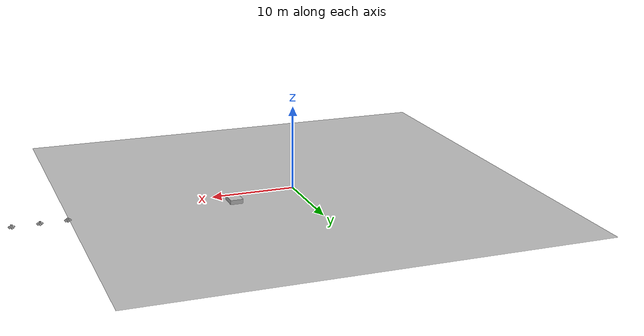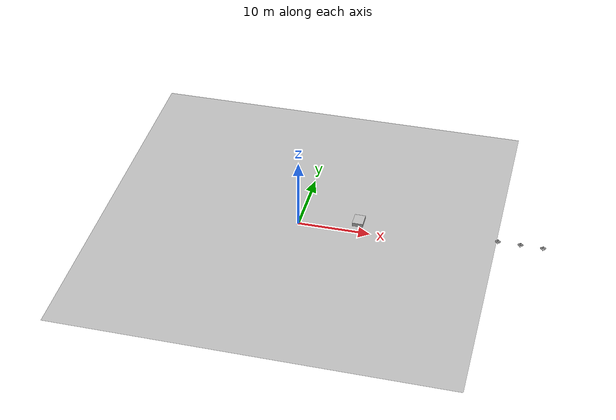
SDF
<?xml version="1.0" ?>
<sdf version="1.10">
  <world name="openlanes">
    <physics type="ode">
      <max_step_size>0.004</max_step_size>
      <real_time_factor>1.0</real_time_factor>
      <real_time_update_rate>250</real_time_update_rate>
    </physics>

    <plugin name="gz::sim::systems::Physics" filename="gz-sim-physics-system"/>
    <plugin name="gz::sim::systems::UserCommands" filename="gz-sim-user-commands-system"/>
    <plugin name="gz::sim::systems::SceneBroadcaster" filename="gz-sim-scene-broadcaster-system"/>
    <plugin name="gz::sim::systems::Contact" filename="gz-sim-contact-system"/>
    <plugin name="gz::sim::systems::Imu" filename="gz-sim-imu-system"/>
    <plugin name="gz::sim::systems::AirPressure" filename="gz-sim-air-pressure-system"/>
    <plugin name="gz::sim::systems::ApplyLinkWrench" filename="gz-sim-apply-link-wrench-system"/>
    <plugin name="gz::sim::systems::NavSat" filename="gz-sim-navsat-system"/>
    <plugin name="gz::sim::systems::Sensors" filename="gz-sim-sensors-system">
      <render_engine>ogre2</render_engine>
    </plugin>

    <gravity>0 0 -9.8</gravity>
    <magnetic_field>6e-06 2.3e-05 -4.2e-05</magnetic_field>
    <atmosphere type="adiabatic"/>
    <spherical_coordinates>
      <surface_model>EARTH_WGS84</surface_model>
      <world_frame_orientation>ENU</world_frame_orientation>
      <latitude_deg>-23.203008</latitude_deg>
      <longitude_deg>-45.874897</longitude_deg>
      <elevation>0</elevation>
    </spherical_coordinates>
    <scene>
      <ambient>0.4 0.4 0.4 1</ambient>
      <background>0.7 0.7 0.7 1</background>
      <shadows>true</shadows>
      <sky>
        <clouds />
      </sky>
    </scene>

    <light type="directional" name="sun">
      <cast_shadows>true</cast_shadows>
      <pose>0 0 20 0 0 0</pose>
      <ambient>0.8 0.8 0.8 1</ambient>
      <diffuse>1.0 1.0 1.0 1</diffuse>
      <specular>0.2 0.2 0.2 1</specular>
      <attenuation>
        <range>1000</range>
        <constant>0.9</constant>
        <linear>0.01</linear>
        <quadratic>0.001</quadratic>
      </attenuation>
      <direction>-0.5 0.1 -0.9</direction>
    </light>

    <!-- ground plane -->
    <model name="ground_plane">
      <static>true</static>
      <link name="link">
        <collision name="collision">
          <geometry>
            <plane>
              <normal>0 0 1</normal>
              <size>250 250</size>
            </plane>
          </geometry>
        </collision>
        <visual name="grass">
          <geometry>
            <mesh>
              <uri>file://grass_plane/meshes/grass_plane.dae</uri>
            </mesh>
          </geometry>
        </visual>
      </link>
    </model>

    <!-- user camera -->
    <gui>
      <camera name="camera">
        <pose>-4 -4 7 0 0.4 0.89</pose>
      </camera>
    </gui>

    <!-- MODELOS EXISTENTES -->
    <model name="takeoff_platform">
      <include>
        <uri>model://takeoff_platform</uri>
        <pose>8.0 2.2 0.0 0.0 -0.0 0.0</pose>
      </include>
    </model>

    <!-- OpenLanes -->
    <model name="openlanes_10ft">
      <include>
        <uri>model://openlanes_10ft</uri>
        <pose>8.5 2.2 0 0 0 0</pose> <!-- Ajuste fino ao lado da plataforma de decolagem -->
      </include>
    </model>

  </world>
</sdf>

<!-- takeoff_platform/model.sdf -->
<sdf version='1.6'>
  <model name='takeoff_platform'>
    <link name='link_takeoff_platform'>
      <inertial>
        <mass>15</mass>
        <inertia>
          <ixx>1</ixx>
          <ixy>0</ixy>
          <ixz>0</ixz>
          <iyy>1</iyy>
          <iyz>0</iyz>
          <izz>1</izz>
        </inertia>
      </inertial>
      <self_collide>1</self_collide>
      <enable_wind>0</enable_wind>
      <kinematic>0</kinematic>
      <pose frame=''>0 0 0 0 -0 0</pose>
      <visual name='visual'>
        <pose frame=''>0 0 0 0 -0 0</pose>
        <geometry>
          <mesh>
            <uri>model://takeoff_platform/meshes/takeoff_platform.obj</uri>
            <scale>1 1 1</scale>
          </mesh>
        </geometry>
        <transparency>0</transparency>
        <cast_shadows>1</cast_shadows>
      </visual>
      <collision name='collision'>
        <laser_retro>0</laser_retro>
        <max_contacts>10</max_contacts>
        <pose frame=''>0 0 0 0 -0 0</pose>
        <geometry>
          <mesh>
            <uri>model://takeoff_platform/meshes/takeoff_platform.obj</uri>
            <scale>1 1 1</scale>
          </mesh>
        </geometry>
        <surface>
          <friction>
            <ode>
              <mu>1</mu>
              <mu2>1</mu2>
              <fdir1>0 0 0</fdir1>
              <slip1>0</slip1>
              <slip2>0</slip2>
            </ode>
            <torsional>
              <coefficient>1</coefficient>
              <patch_radius>100</patch_radius>
              <surface_radius>100</surface_radius>
              <use_patch_radius>1</use_patch_radius>
              <ode>
                <slip>0</slip>
              </ode>
            </torsional>
          </friction>
          <bounce>
            <restitution_coefficient>0</restitution_coefficient>
            <threshold>1e+06</threshold>
          </bounce>
          <contact>
            <collide_without_contact>0</collide_without_contact>
            <collide_without_contact_bitmask>1</collide_without_contact_bitmask>
            <collide_bitmask>1</collide_bitmask>
            <ode>
              <soft_cfm>0</soft_cfm>
              <soft_erp>0.2</soft_erp>
              <kp>1e+13</kp>
              <kd>1</kd>
              <max_vel>0.01</max_vel>
              <min_depth>0</min_depth>
            </ode>
            <bullet>
              <split_impulse>1</split_impulse>
              <split_impulse_penetration_threshold>-0.01</split_impulse_penetration_threshold>
              <soft_cfm>0</soft_cfm>
              <soft_erp>0.2</soft_erp>
              <kp>1e+13</kp>
              <kd>1</kd>
            </bullet>
          </contact>
        </surface>
      </collision>
    </link>
    <static>1</static>
    <pose frame=''>0 0 0.0005 0 -0 0</pose>
  </model>
</sdf>

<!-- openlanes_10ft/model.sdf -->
<sdf version="1.10">
  <model name="openlanes_10ft">
    <static>true</static>
    <link name="link">
      <visual name="visual">
        <geometry>
          <mesh>
            <uri>model://openlanes_10ft/meshes/OpenLanes-10ft-WithVehicle-v2020B.obj</uri>
            <scale>0.01 0.01 0.01</scale>
          </mesh>
        </geometry>
      </visual>
    </link>
  </model>
</sdf>
